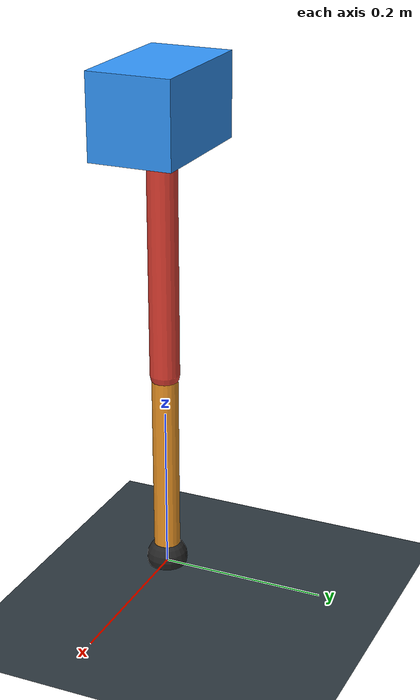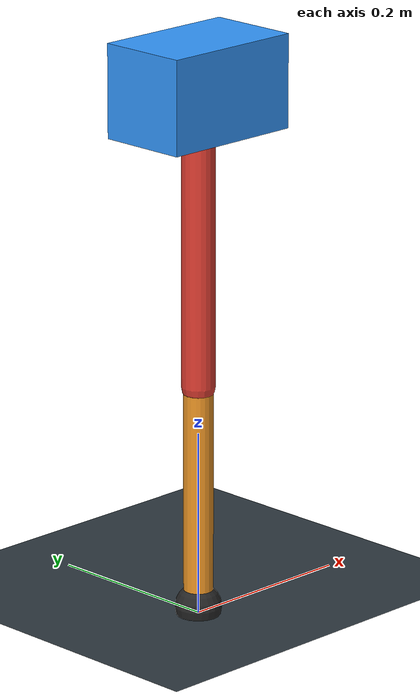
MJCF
<mujoco model="single_axis_two_bar">
  <compiler angle="radian" inertiafromgeom="true"/>
  <option timestep="0.001" integrator="implicitfast" gravity="0 0 -9.81"/>
  <default>
    <joint damping="0.08"/>
    <geom friction="1.2 0.01 0.0001" condim="3"/>
  </default>
  <worldbody>
    <geom name="floor" type="plane" size="5 5 0.1" rgba="0.18 0.22 0.25 1"/>
    <body name="carriage" pos="0 0 0.5745909923522207">
      <joint name="pole_slide" type="slide" axis="0 0 1"/>
      <geom name="payload" type="box" size="0.08 0.05 0.05" mass="2.4534655342446756" rgba="0.2 0.6 1 1"/>
      <body name="thigh" pos="0 0 0">
        <joint name="hip" type="hinge" axis="0 1 0"/>
        <geom name="thigh_link" type="capsule" fromto="0 0 0 0 0 -0.3223006054461958" size="0.018" mass="0.22964344020716618" rgba="0.9 0.25 0.2 1"/>
        <body name="shank" pos="0 0 -0.3223006054461958">
          <joint name="knee" type="hinge" axis="0 1 0"/>
          <geom name="shank_link" type="capsule" fromto="0 0 0 0 0 -0.24428804646330993" size="0.016" mass="0.17405846108684275" rgba="0.95 0.6 0.15 1"/>
          <geom name="foot" type="sphere" pos="0 0 -0.24428804646330993" size="0.025" mass="0.03" rgba="0.15 0.15 0.15 1"/>
          <site name="toe" pos="0 0 -0.24428804646330993" size="0.008"/>
        </body>
      </body>
    </body>
  </worldbody>
  <actuator>
    <motor name="hip_motor" joint="hip" ctrlrange="-30.918438937170656 30.918438937170656"/>
    <motor name="knee_motor" joint="knee" ctrlrange="-104.08304087142976 104.08304087142976"/>
  </actuator>
</mujoco>
